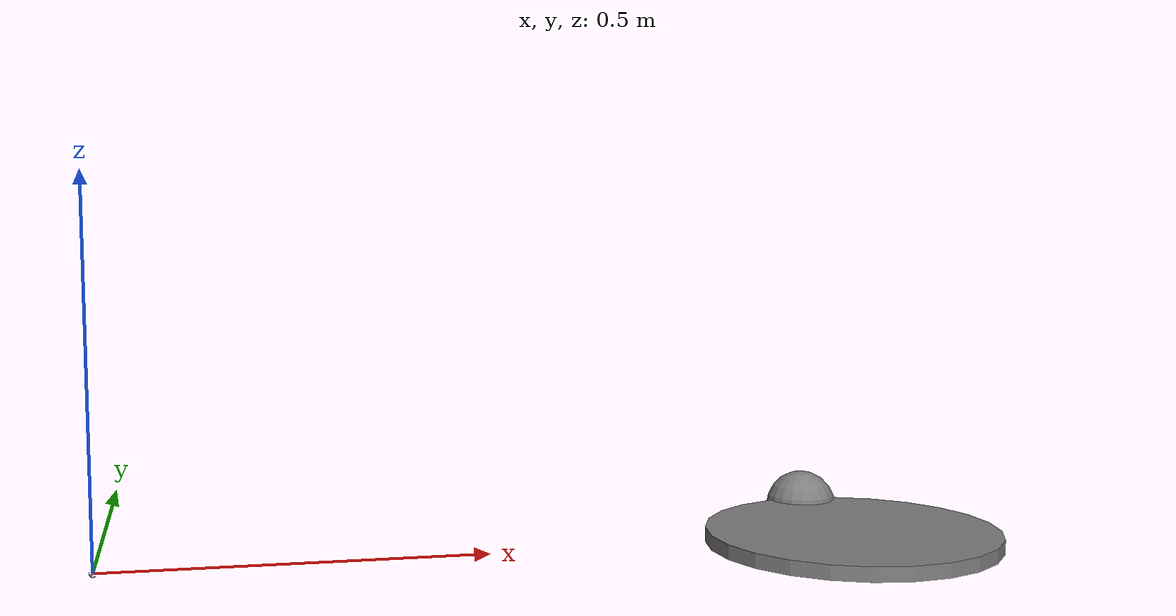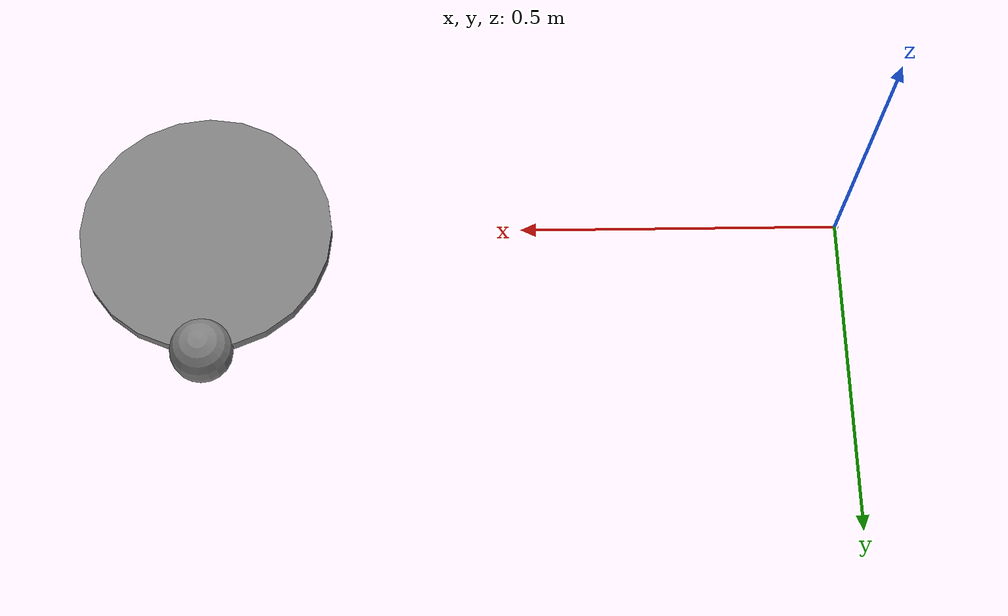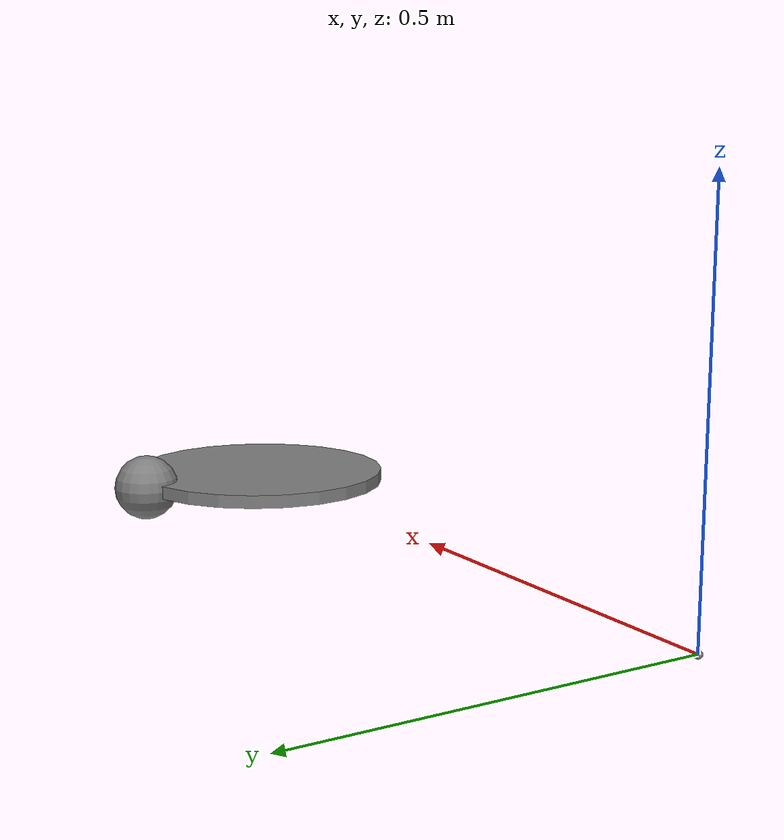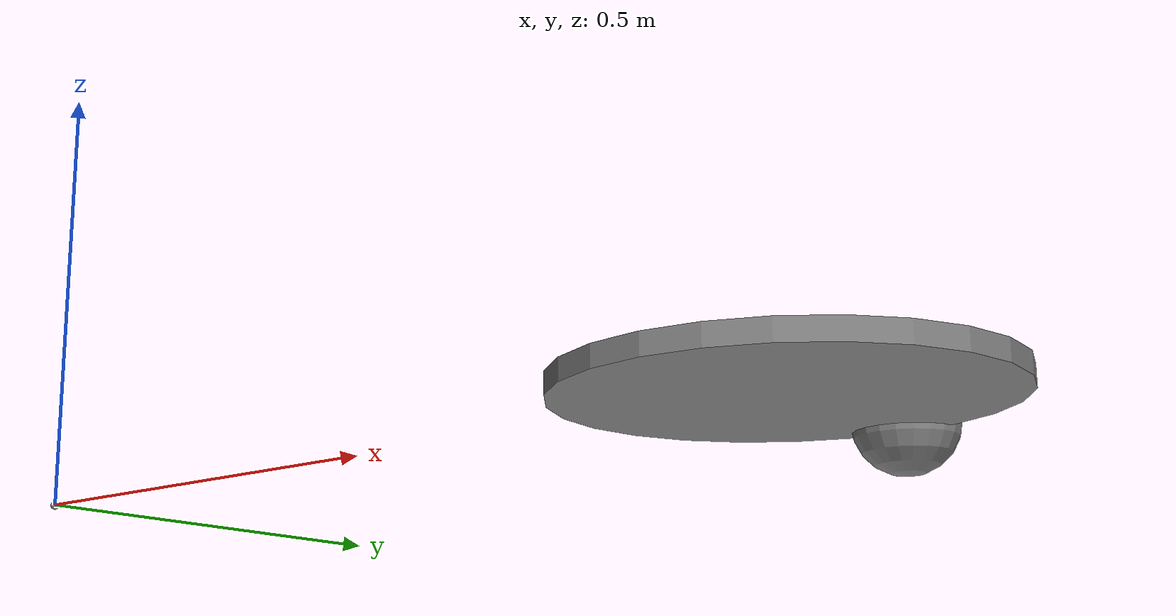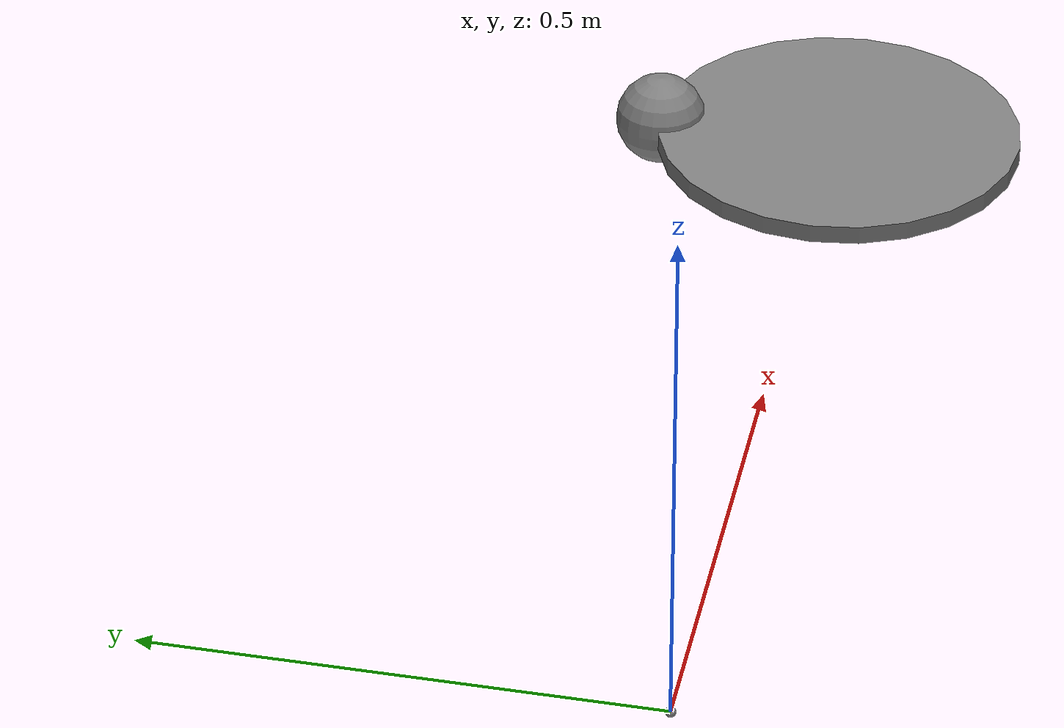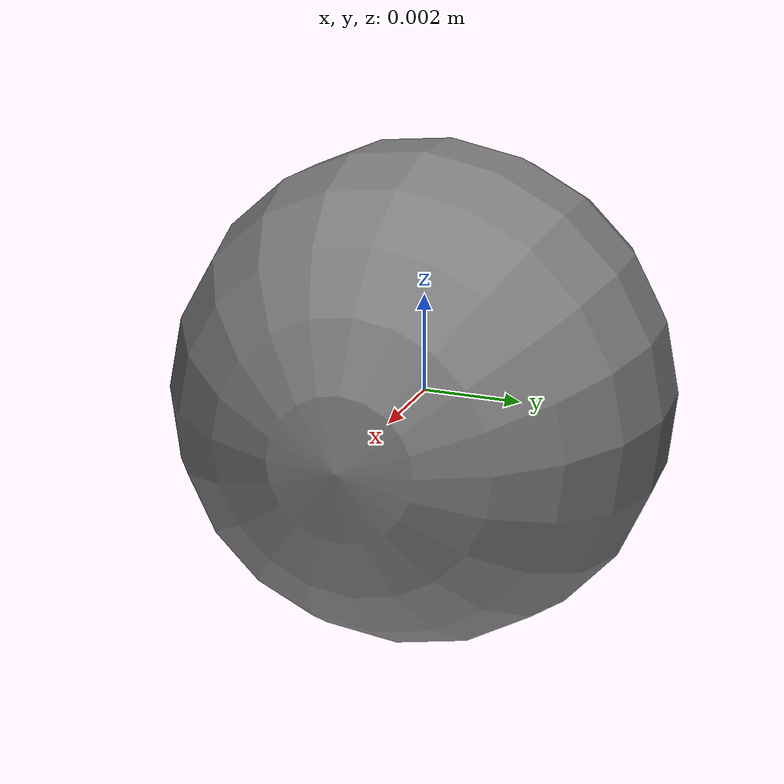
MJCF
<mujoco>
  <compiler angle="degree"/>
  <worldbody>
    <site name="slidersite" euler="0 90 0"/>
    <body pos="1 0 0">
      <joint type="hinge" axis="0 0 1"/>
      <geom type="sphere" size=".05" pos="0 0.2 0"/>
      <geom type="cylinder" size=".2 .01"/>
      <site name="cranksite" pos="0 0.2 0"/>
    </body>
  </worldbody>
  <actuator>
    <motor cranklength="0.25" cranksite="cranksite" slidersite="slidersite"/>
  </actuator>
</mujoco>
